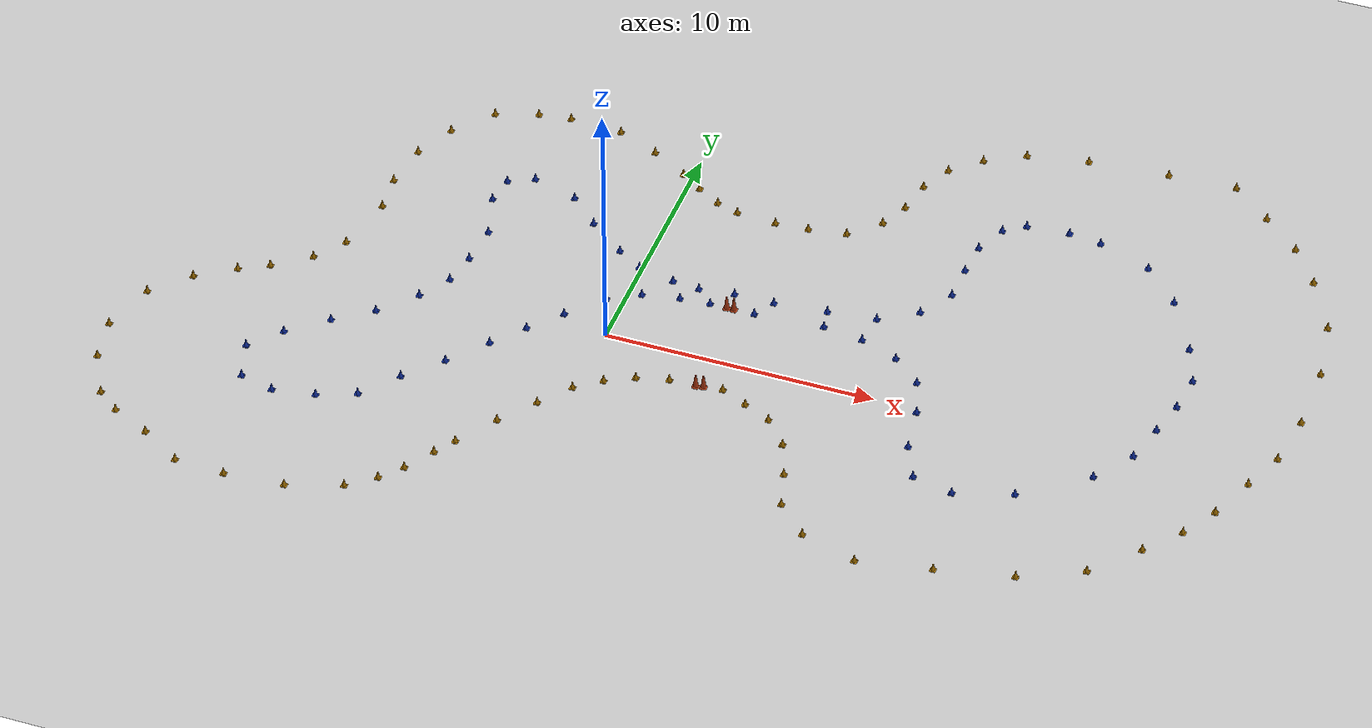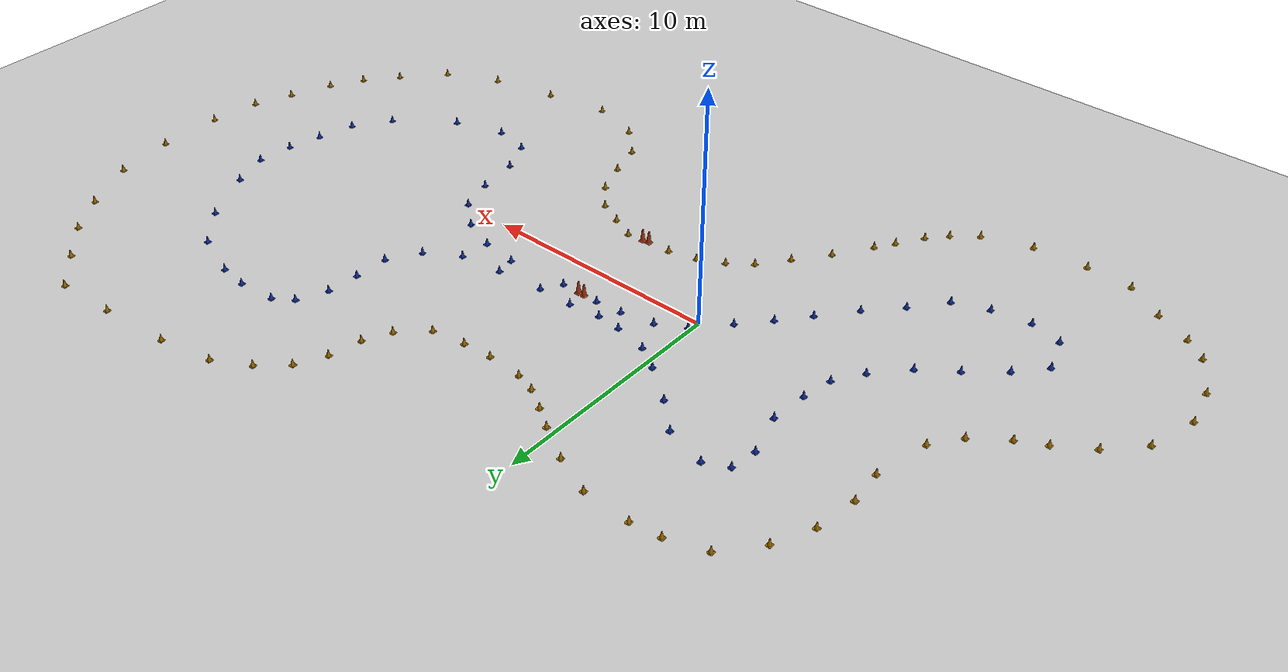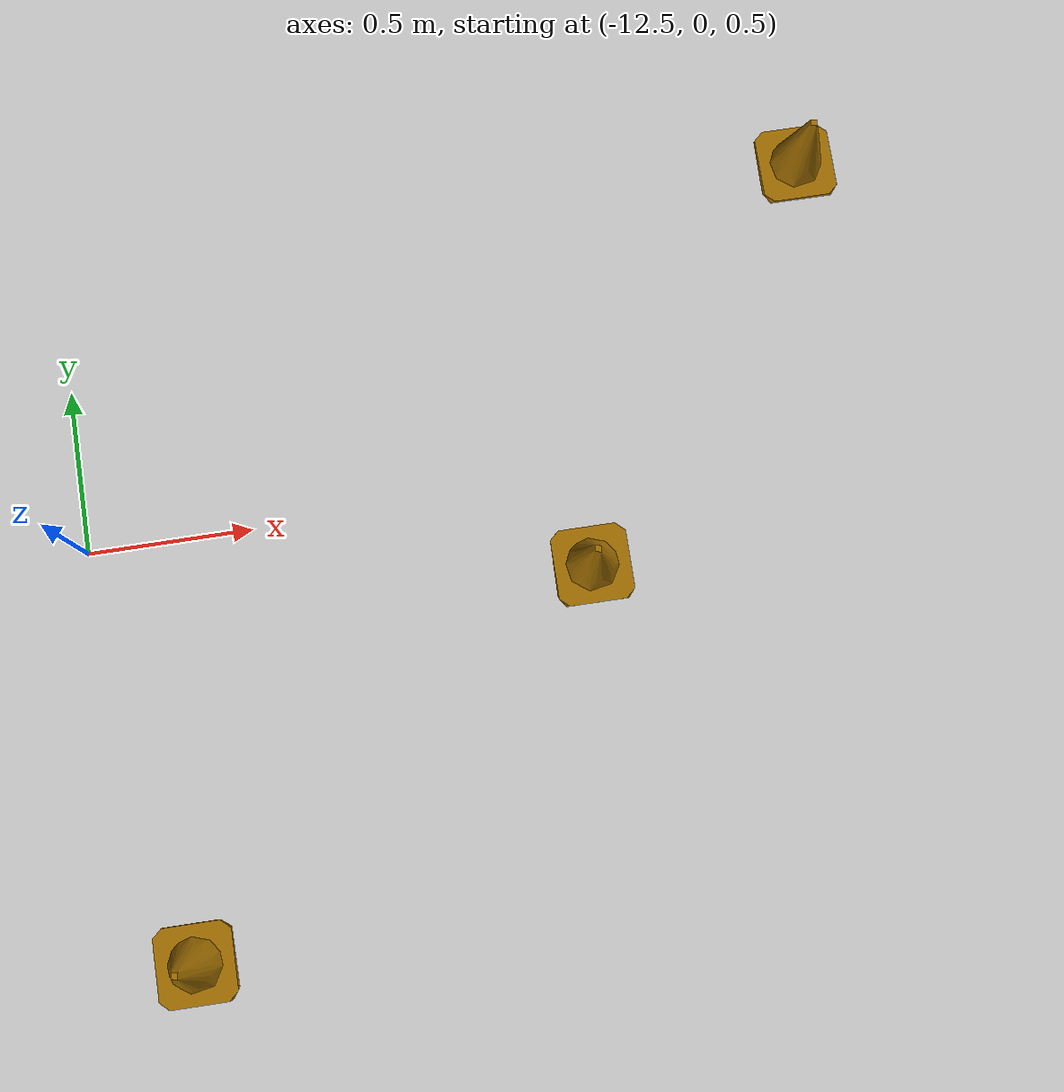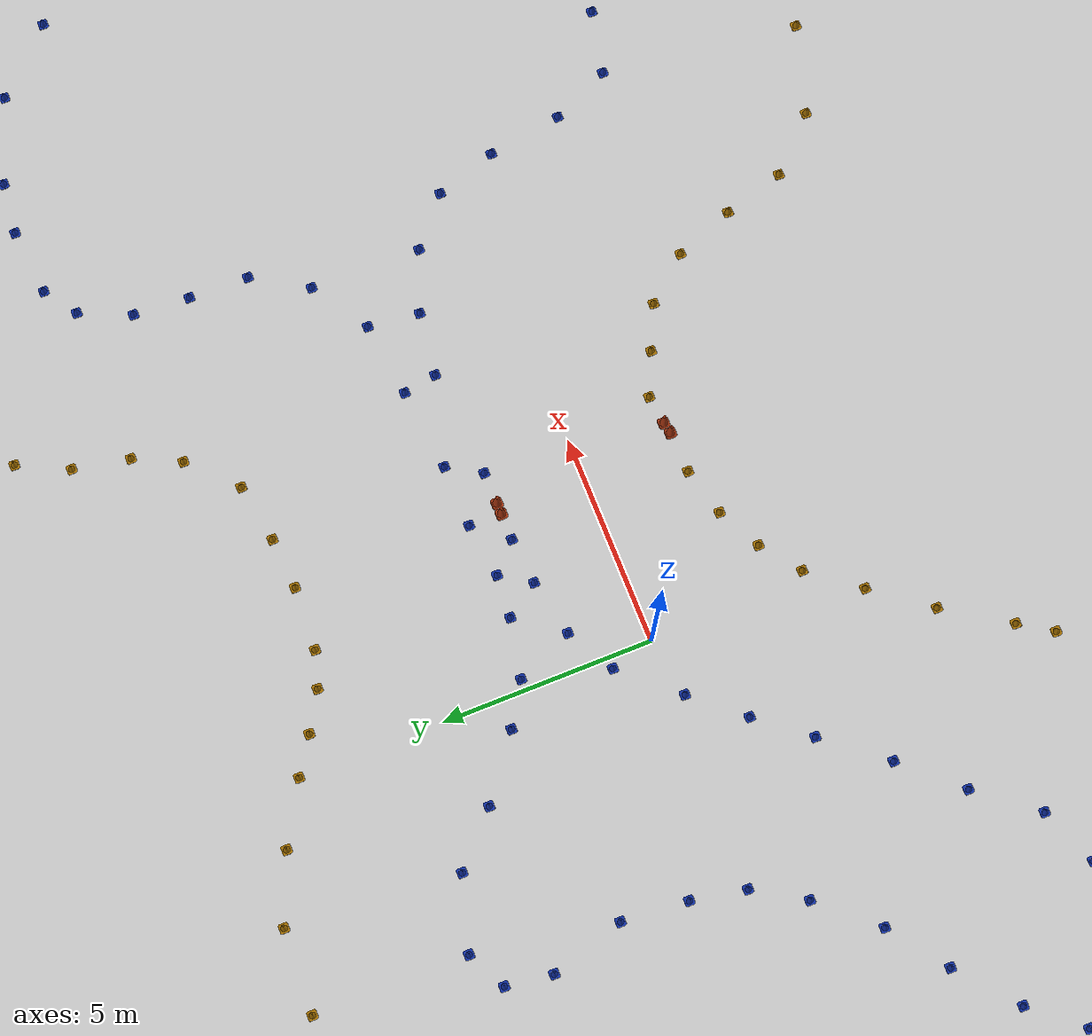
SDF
<sdf version='1.6'>
  <world name='its_a_mess'>
    <gui fullscreen='0'>
      <camera name='user_camera'>
        <pose frame=''>-40 40 20 0 0.667643 -1</pose>
        <view_controller>orbit</view_controller>
        <projection_type>perspective</projection_type>
      </camera>
    </gui>

    <!-- WORLD SETTINGS -->
    <scene>
      <ambient>1.0 1.0 1.0 1.0</ambient>
      <shadows>false</shadows>
    </scene>

    <spherical_coordinates>
      <heading_deg>180</heading_deg>

      <!-- Appleton Tower coordinates -->
      <latitude_deg>-27.69056</latitude_deg>
      <longitude_deg>152.65461</longitude_deg>
    </spherical_coordinates>

    <light name='sun' type='directional'>
      <cast_shadows>1</cast_shadows>
      <pose frame=''>0 0 10 0 -0 0</pose>
      <diffuse>0.8 0.8 0.8 1</diffuse>
      <specular>0.1 0.1 0.1 1</specular>
      <attenuation>
        <range>1000</range>
        <constant>0.9</constant>
        <linear>0.01</linear>
        <quadratic>0.001</quadratic>
      </attenuation>
      <direction>-0.5 0.5 -1</direction>
    </light>

    <!-- MODELS -->
    <include>
      <uri>model://ground_plane</uri>
      <pose>0.0 0.0 0.0 0 0 0</pose>
    </include>

    <include>
      <uri>model://its_a_mess</uri>
      <pose>0 0 0.5 0 0 0</pose>
    </include>

  </world>
</sdf>

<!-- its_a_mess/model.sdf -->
<sdf version='1.6'>
  <model name='track'>

    <include>
      <pose>4.8214289796707925 2.109534520969823 0.15 0 0 0</pose>
      <uri>model://blue_cone</uri>
      <name>blue_cone_0</name>

      <covariance x="0.000196" y="0.000196" xy="0.0"/>

    </include>

    <include>
      <pose>7.362084881419405 2.2996896382192737 0.15 0 0 0</pose>
      <uri>model://blue_cone</uri>
      <name>blue_cone_1</name>

      <covariance x="0.000196" y="0.000196" xy="0.0"/>

    </include>

    <include>
      <pose>8.85352742337615 2.095388080882326 0.15 0 0 0</pose>
      <uri>model://blue_cone</uri>
      <name>blue_cone_2</name>

      <covariance x="0.000196" y="0.000196" xy="0.0"/>

    </include>

    <include>
      <pose>10.27972573610968 1.5555186727891026 0.15 0 0 0</pose>
      <uri>model://blue_cone</uri>
      <name>blue_cone_3</name>

      <covariance x="0.000196" y="0.000196" xy="0.0"/>

    </include>

    <include>
      <pose>11.36584017246341 0.6150953153328437 0.15 0 0 0</pose>
      <uri>model://blue_cone</uri>
      <name>blue_cone_4</name>

      <covariance x="0.000196" y="0.000196" xy="0.0"/>

    </include>

    <include>
      <pose>11.83304349910687 -0.8292191570937713 0.15 0 0 0</pose>
      <uri>model://blue_cone</uri>
      <name>blue_cone_5</name>

      <covariance x="0.000196" y="0.000196" xy="0.0"/>

    </include>

    <include>
      <pose>12.108844855346984 -2.585824340989765 0.15 0 0 0</pose>
      <uri>model://blue_cone</uri>
      <name>blue_cone_6</name>

      <covariance x="0.000196" y="0.000196" xy="0.0"/>

    </include>

    <include>
      <pose>12.739354408724912 -3.9622404928255888 0.15 0 0 0</pose>
      <uri>model://blue_cone</uri>
      <name>blue_cone_7</name>

      <covariance x="0.000196" y="0.000196" xy="0.0"/>

    </include>

    <include>
      <pose>14.23705605594812 -4.29034698069868 0.15 0 0 0</pose>
      <uri>model://blue_cone</uri>
      <name>blue_cone_8</name>

      <covariance x="0.000196" y="0.000196" xy="0.0"/>

    </include>

    <include>
      <pose>16.30439192053535 -3.6306687056767313 0.15 0 0 0</pose>
      <uri>model://blue_cone</uri>
      <name>blue_cone_9</name>

      <covariance x="0.000196" y="0.000196" xy="0.0"/>

    </include>

    <include>
      <pose>18.56879719193405 -1.8938874403966963 0.15 0 0 0</pose>
      <uri>model://blue_cone</uri>
      <name>blue_cone_10</name>

      <covariance x="0.000196" y="0.000196" xy="0.0"/>

    </include>

    <include>
      <pose>19.564050074725436 -0.4315688013304607 0.15 0 0 0</pose>
      <uri>model://blue_cone</uri>
      <name>blue_cone_11</name>

      <covariance x="0.0001997419354838" y="0.0001997419354838" xy="0.0"/>

    </include>

    <include>
      <pose>19.939860737553776 1.094348420758153 0.15 0 0 0</pose>
      <uri>model://blue_cone</uri>
      <name>blue_cone_12</name>

      <covariance x="0.000196" y="0.000196" xy="0.0"/>

    </include>

    <include>
      <pose>20.26345106068241 2.475695900906594 0.15 0 0 0</pose>
      <uri>model://blue_cone</uri>
      <name>blue_cone_13</name>

      <covariance x="0.000196" y="0.000196" xy="0.0"/>

    </include>

    <include>
      <pose>20.40736412759099 3.939646282932845 0.15 0 0 0</pose>
      <uri>model://blue_cone</uri>
      <name>blue_cone_14</name>

      <covariance x="0.000196" y="0.000196" xy="0.0"/>

    </include>

    <include>
      <pose>19.83989533877488 5.480784110047874 0.15 0 0 0</pose>
      <uri>model://blue_cone</uri>
      <name>blue_cone_15</name>

      <covariance x="0.000196" y="0.000196" xy="0.0"/>

    </include>

    <include>
      <pose>18.62329169235484 7.685268326155173 0.15 0 0 0</pose>
      <uri>model://blue_cone</uri>
      <name>blue_cone_16</name>

      <covariance x="0.000196" y="0.000196" xy="0.0"/>

    </include>

    <include>
      <pose>17.236067492728257 9.12498794566818 0.15 0 0 0</pose>
      <uri>model://blue_cone</uri>
      <name>blue_cone_17</name>

      <covariance x="0.000196" y="0.000196" xy="0.0"/>

    </include>

    <include>
      <pose>15.245809163684743 9.844538271911397 0.15 0 0 0</pose>
      <uri>model://blue_cone</uri>
      <name>blue_cone_18</name>

      <covariance x="0.000196" y="0.000196" xy="0.0"/>

    </include>

    <include>
      <pose>14.037464908705076 9.9974619439644 0.15 0 0 0</pose>
      <uri>model://blue_cone</uri>
      <name>blue_cone_19</name>

      <covariance x="0.000196" y="0.000196" xy="0.0"/>

    </include>

    <include>
      <pose>12.474932555743347 9.859100764528208 0.15 0 0 0</pose>
      <uri>model://blue_cone</uri>
      <name>blue_cone_20</name>

      <covariance x="0.000196" y="0.000196" xy="0.0"/>

    </include>

    <include>
      <pose>11.717815928885946 9.33546946387704 0.15 0 0 0</pose>
      <uri>model://blue_cone</uri>
      <name>blue_cone_21</name>

      <covariance x="0.000196" y="0.000196" xy="0.0"/>

    </include>

    <include>
      <pose>11.206552284212398 8.149798904542228 0.15 0 0 0</pose>
      <uri>model://blue_cone</uri>
      <name>blue_cone_22</name>

      <covariance x="0.000196" y="0.000196" xy="0.0"/>

    </include>

    <include>
      <pose>11.121536880799685 6.828570523050228 0.15 0 0 0</pose>
      <uri>model://blue_cone</uri>
      <name>blue_cone_23</name>

      <covariance x="0.000196" y="0.000196" xy="0.0"/>

    </include>

    <include>
      <pose>11.089103792355496 5.423714410866328 0.15 0 0 0</pose>
      <uri>model://blue_cone</uri>
      <name>blue_cone_24</name>

      <covariance x="0.000196" y="0.000196" xy="0.0"/>

    </include>

    <include>
      <pose>10.322925798841846 4.161218523823576 0.15 0 0 0</pose>
      <uri>model://blue_cone</uri>
      <name>blue_cone_25</name>

      <covariance x="0.000196" y="0.000196" xy="0.0"/>

    </include>

    <include>
      <pose>8.988343264840141 3.3039751500155905 0.15 0 0 0</pose>
      <uri>model://blue_cone</uri>
      <name>blue_cone_26</name>

      <covariance x="0.000196" y="0.000196" xy="0.0"/>

    </include>

    <include>
      <pose>7.222726623899107 3.091712547316123 0.15 0 0 0</pose>
      <uri>model://blue_cone</uri>
      <name>blue_cone_27</name>

      <covariance x="0.000196" y="0.000196" xy="0.0"/>

    </include>

    <include>
      <pose>5.284647391741218 2.891301906877059 0.15 0 0 0</pose>
      <uri>model://blue_cone</uri>
      <name>blue_cone_28</name>

      <covariance x="0.000196" y="0.000196" xy="0.0"/>

    </include>

    <include>
      <pose>3.816469104313143 2.868736036678886 0.15 0 0 0</pose>
      <uri>model://blue_cone</uri>
      <name>blue_cone_29</name>

      <covariance x="0.000196" y="0.000196" xy="0.0"/>

    </include>

    <include>
      <pose>2.529690135249283 2.7088008638666 0.15 0 0 0</pose>
      <uri>model://blue_cone</uri>
      <name>blue_cone_30</name>

      <covariance x="0.000196" y="0.000196" xy="0.0"/>

    </include>

    <include>
      <pose>1.5252200228737984 2.789037315047576 0.15 0 0 0</pose>
      <uri>model://blue_cone</uri>
      <name>blue_cone_31</name>

      <covariance x="0.000196" y="0.000196" xy="0.0"/>

    </include>

    <include>
      <pose>0.1456731950192958 3.080291042039387 0.15 0 0 0</pose>
      <uri>model://blue_cone</uri>
      <name>blue_cone_32</name>

      <covariance x="0.0001992222222222" y="0.0001992222222222" xy="0.0"/>

    </include>

    <include>
      <pose>-0.8196889122386551 3.690847556210096 0.15 0 0 0</pose>
      <uri>model://blue_cone</uri>
      <name>blue_cone_33</name>

      <covariance x="0.000196" y="0.000196" xy="0.0"/>

    </include>

    <include>
      <pose>-2.228840832571205 4.773949619520888 0.15 0 0 0</pose>
      <uri>model://blue_cone</uri>
      <name>blue_cone_34</name>

      <covariance x="0.000196" y="0.000196" xy="0.0"/>

    </include>

    <include>
      <pose>-3.367631466225215 5.85537457586615 0.15 0 0 0</pose>
      <uri>model://blue_cone</uri>
      <name>blue_cone_35</name>

      <covariance x="0.000196" y="0.000196" xy="0.0"/>

    </include>

    <include>
      <pose>-5.0768380693607975 6.366438186335612 0.15 0 0 0</pose>
      <uri>model://blue_cone</uri>
      <name>blue_cone_36</name>

      <covariance x="0.000196" y="0.000196" xy="0.0"/>

    </include>

    <include>
      <pose>-5.992009869586433 5.911634285918478 0.15 0 0 0</pose>
      <uri>model://blue_cone</uri>
      <name>blue_cone_37</name>

      <covariance x="0.000196" y="0.000196" xy="0.0"/>

    </include>

    <include>
      <pose>-6.138349926675422 4.809588502000279 0.15 0 0 0</pose>
      <uri>model://blue_cone</uri>
      <name>blue_cone_38</name>

      <covariance x="0.000196" y="0.000196" xy="0.0"/>

    </include>

    <include>
      <pose>-5.621073259159888 3.057539222654084 0.15 0 0 0</pose>
      <uri>model://blue_cone</uri>
      <name>blue_cone_39</name>

      <covariance x="0.000196" y="0.000196" xy="0.0"/>

    </include>

    <include>
      <pose>-5.7435806540893575 1.4973061031362862 0.15 0 0 0</pose>
      <uri>model://blue_cone</uri>
      <name>blue_cone_40</name>

      <covariance x="0.000196" y="0.000196" xy="0.0"/>

    </include>

    <include>
      <pose>-5.98044005978915 0.21567549281799 0.15 0 0 0</pose>
      <uri>model://blue_cone</uri>
      <name>blue_cone_41</name>

      <covariance x="0.000196" y="0.000196" xy="0.0"/>

    </include>

    <include>
      <pose>-6.69282893879381 -0.9405404900182862 0.15 0 0 0</pose>
      <uri>model://blue_cone</uri>
      <name>blue_cone_42</name>

      <covariance x="0.000196" y="0.000196" xy="0.0"/>

    </include>

    <include>
      <pose>-7.833151155935672 -2.218574142081634 0.15 0 0 0</pose>
      <uri>model://blue_cone</uri>
      <name>blue_cone_43</name>

      <covariance x="0.000196" y="0.000196" xy="0.0"/>

    </include>

    <include>
      <pose>-9.14903637392294 -3.1939194036578407 0.15 0 0 0</pose>
      <uri>model://blue_cone</uri>
      <name>blue_cone_44</name>

      <covariance x="0.000196" y="0.000196" xy="0.0"/>

    </include>

    <include>
      <pose>-10.477001962463143 -4.321130469053749 0.15 0 0 0</pose>
      <uri>model://blue_cone</uri>
      <name>blue_cone_45</name>

      <covariance x="0.000196" y="0.000196" xy="0.0"/>

    </include>

    <include>
      <pose>-11.44095543648099 -5.446559209881228 0.15 0 0 0</pose>
      <uri>model://blue_cone</uri>
      <name>blue_cone_46</name>

      <covariance x="0.000196" y="0.000196" xy="0.0"/>

    </include>

    <include>
      <pose>-10.97991515616471 -6.9431300898168695 0.15 0 0 0</pose>
      <uri>model://blue_cone</uri>
      <name>blue_cone_47</name>

      <covariance x="0.000196" y="0.000196" xy="0.0"/>

    </include>

    <include>
      <pose>-9.71003554814767 -7.265180402578588 0.15 0 0 0</pose>
      <uri>model://blue_cone</uri>
      <name>blue_cone_48</name>

      <covariance x="0.000196" y="0.000196" xy="0.0"/>

    </include>

    <include>
      <pose>-8.16531074104349 -7.005628000005348 0.15 0 0 0</pose>
      <uri>model://blue_cone</uri>
      <name>blue_cone_49</name>

      <covariance x="0.000196" y="0.000196" xy="0.0"/>

    </include>

    <include>
      <pose>-6.800706765361042 -6.458798806725916 0.15 0 0 0</pose>
      <uri>model://blue_cone</uri>
      <name>blue_cone_50</name>

      <covariance x="0.000196" y="0.000196" xy="0.0"/>

    </include>

    <include>
      <pose>-5.72646770180295 -5.112721213656666 0.15 0 0 0</pose>
      <uri>model://blue_cone</uri>
      <name>blue_cone_51</name>

      <covariance x="0.0001978125" y="0.0001978125" xy="0.0"/>

    </include>

    <include>
      <pose>-4.554133358810368 -3.837591717632877 0.15 0 0 0</pose>
      <uri>model://blue_cone</uri>
      <name>blue_cone_52</name>

      <covariance x="0.000196" y="0.000196" xy="0.0"/>

    </include>

    <include>
      <pose>-3.4278001577254127 -2.4512542635725496 0.15 0 0 0</pose>
      <uri>model://blue_cone</uri>
      <name>blue_cone_53</name>

      <covariance x="0.000196" y="0.000196" xy="0.0"/>

    </include>

    <include>
      <pose>-2.489133773496212 -1.2831951619269517 0.15 0 0 0</pose>
      <uri>model://blue_cone</uri>
      <name>blue_cone_54</name>

      <covariance x="0.000196" y="0.000196" xy="0.0"/>

    </include>

    <include>
      <pose>-1.5027682092815549 -0.1469269043776656 0.15 0 0 0</pose>
      <uri>model://blue_cone</uri>
      <name>blue_cone_55</name>

      <covariance x="0.000196" y="0.000196" xy="0.0"/>

    </include>

    <include>
      <pose>-0.3753500330211936 1.1075215976557389 0.15 0 0 0</pose>
      <uri>model://blue_cone</uri>
      <name>blue_cone_56</name>

      <covariance x="0.000196" y="0.000196" xy="0.0"/>

    </include>

    <include>
      <pose>0.7295692745355773 1.735027937512749 0.15 0 0 0</pose>
      <uri>model://blue_cone</uri>
      <name>blue_cone_57</name>

      <covariance x="0.000196" y="0.000196" xy="0.0"/>

    </include>

    <include>
      <pose>2.06942919758116 2.005554994720331 0.15 0 0 0</pose>
      <uri>model://blue_cone</uri>
      <name>blue_cone_58</name>

      <covariance x="0.000196" y="0.000196" xy="0.0"/>

    </include>

    <include>
      <pose>3.1698856110931 2.1001675143921634 0.15 0 0 0</pose>
      <uri>model://blue_cone</uri>
      <name>blue_cone_59</name>

      <covariance x="0.000196" y="0.000196" xy="0.0"/>

    </include>

    <include>
      <pose>5.108230720354353 -2.0034897337304542 0.15 0 0 0</pose>
      <uri>model://yellow_cone</uri>
      <name>yellow_cone_60</name>

      <covariance x="0.000196" y="0.000196" xy="0.0"/>

    </include>

    <include>
      <pose>6.096152170796511 -2.4527937148287604 0.15 0 0 0</pose>
      <uri>model://yellow_cone</uri>
      <name>yellow_cone_61</name>

      <covariance x="0.000196" y="0.000196" xy="0.0"/>

    </include>

    <include>
      <pose>7.117050602336171 -2.931042052039907 0.15 0 0 0</pose>
      <uri>model://yellow_cone</uri>
      <name>yellow_cone_62</name>

      <covariance x="0.000196" y="0.000196" xy="0.0"/>

    </include>

    <include>
      <pose>7.99331940606393 -3.952691580855978 0.15 0 0 0</pose>
      <uri>model://yellow_cone</uri>
      <name>yellow_cone_63</name>

      <covariance x="0.000196" y="0.000196" xy="0.0"/>

    </include>

    <include>
      <pose>8.522666573627157 -5.3442512495655325 0.15 0 0 0</pose>
      <uri>model://yellow_cone</uri>
      <name>yellow_cone_64</name>

      <covariance x="0.000196" y="0.000196" xy="0.0"/>

    </include>

    <include>
      <pose>8.937436416146909 -6.782336140114061 0.15 0 0 0</pose>
      <uri>model://yellow_cone</uri>
      <name>yellow_cone_65</name>

      <covariance x="0.000196" y="0.000196" xy="0.0"/>

    </include>

    <include>
      <pose>10.091665702733463 -7.941948638960429 0.15 0 0 0</pose>
      <uri>model://yellow_cone</uri>
      <name>yellow_cone_66</name>

      <covariance x="0.000196" y="0.000196" xy="0.0"/>

    </include>

    <include>
      <pose>12.170632528152256 -8.569999305310416 0.15 0 0 0</pose>
      <uri>model://yellow_cone</uri>
      <name>yellow_cone_67</name>

      <covariance x="0.000196" y="0.000196" xy="0.0"/>

    </include>

    <include>
      <pose>14.811756816526596 -8.070045143327375 0.15 0 0 0</pose>
      <uri>model://yellow_cone</uri>
      <name>yellow_cone_68</name>

      <covariance x="0.000196" y="0.000196" xy="0.0"/>

    </include>

    <include>
      <pose>17.54667973242898 -7.478267646350247 0.15 0 0 0</pose>
      <uri>model://yellow_cone</uri>
      <name>yellow_cone_69</name>

      <covariance x="0.000196" y="0.000196" xy="0.0"/>

    </include>

    <include>
      <pose>19.72840829425381 -6.408207424974679 0.15 0 0 0</pose>
      <uri>model://yellow_cone</uri>
      <name>yellow_cone_70</name>

      <covariance x="0.000196" y="0.000196" xy="0.0"/>

    </include>

    <include>
      <pose>21.193193698083142 -4.790743010990266 0.15 0 0 0</pose>
      <uri>model://yellow_cone</uri>
      <name>yellow_cone_71</name>

      <covariance x="0.000196" y="0.000196" xy="0.0"/>

    </include>

    <include>
      <pose>22.25244661889156 -3.5063914812990933 0.15 0 0 0</pose>
      <uri>model://yellow_cone</uri>
      <name>yellow_cone_72</name>

      <covariance x="0.000196" y="0.000196" xy="0.0"/>

    </include>

    <include>
      <pose>23.007103066051453 -2.1796530678642987 0.15 0 0 0</pose>
      <uri>model://yellow_cone</uri>
      <name>yellow_cone_73</name>

      <covariance x="0.000196" y="0.000196" xy="0.0"/>

    </include>

    <include>
      <pose>23.67962634333316 -0.4540837046513448 0.15 0 0 0</pose>
      <uri>model://yellow_cone</uri>
      <name>yellow_cone_74</name>

      <covariance x="0.000196" y="0.000196" xy="0.0"/>

    </include>

    <include>
      <pose>24.287082185329176 1.1034364837132262 0.15 0 0 0</pose>
      <uri>model://yellow_cone</uri>
      <name>yellow_cone_75</name>

      <covariance x="0.000196" y="0.000196" xy="0.0"/>

    </include>

    <include>
      <pose>24.55067308980838 3.155807963786877 0.15 0 0 0</pose>
      <uri>model://yellow_cone</uri>
      <name>yellow_cone_76</name>

      <covariance x="0.000196" y="0.000196" xy="0.0"/>

    </include>

    <include>
      <pose>24.52175817701454 5.77792621193351 0.15 0 0 0</pose>
      <uri>model://yellow_cone</uri>
      <name>yellow_cone_77</name>

      <covariance x="0.000196" y="0.000196" xy="0.0"/>

    </include>

    <include>
      <pose>24.10747716406054 8.20373316034032 0.15 0 0 0</pose>
      <uri>model://yellow_cone</uri>
      <name>yellow_cone_78</name>

      <covariance x="0.000196" y="0.000196" xy="0.0"/>

    </include>

    <include>
      <pose>22.988933155742732 10.369064208119006 0.15 0 0 0</pose>
      <uri>model://yellow_cone</uri>
      <name>yellow_cone_79</name>

      <covariance x="0.000196" y="0.000196" xy="0.0"/>

    </include>

    <include>
      <pose>21.902132020885507 11.879809793727196 0.15 0 0 0</pose>
      <uri>model://yellow_cone</uri>
      <name>yellow_cone_80</name>

      <covariance x="0.000196" y="0.000196" xy="0.0"/>

    </include>

    <include>
      <pose>20.473816744907086 13.158658905871738 0.15 0 0 0</pose>
      <uri>model://yellow_cone</uri>
      <name>yellow_cone_81</name>

      <covariance x="0.000196" y="0.000196" xy="0.0"/>

    </include>

    <include>
      <pose>18.973867134767374 14.42005905660278 0.15 0 0 0</pose>
      <uri>model://yellow_cone</uri>
      <name>yellow_cone_82</name>

      <covariance x="0.000196" y="0.000196" xy="0.0"/>

    </include>

    <include>
      <pose>16.473065661620293 14.28136549107889 0.15 0 0 0</pose>
      <uri>model://yellow_cone</uri>
      <name>yellow_cone_83</name>

      <covariance x="0.000196" y="0.000196" xy="0.0"/>

    </include>

    <include>
      <pose>13.521792118405765 14.030613387977256 0.15 0 0 0</pose>
      <uri>model://yellow_cone</uri>
      <name>yellow_cone_84</name>

      <covariance x="0.000196" y="0.000196" xy="0.0"/>

    </include>

    <include>
      <pose>11.302823550348007 13.595496527329756 0.15 0 0 0</pose>
      <uri>model://yellow_cone</uri>
      <name>yellow_cone_85</name>

      <covariance x="0.000196" y="0.000196" xy="0.0"/>

    </include>

    <include>
      <pose>9.894189855877237 12.79408604489956 0.15 0 0 0</pose>
      <uri>model://yellow_cone</uri>
      <name>yellow_cone_86</name>

      <covariance x="0.000196" y="0.000196" xy="0.0"/>

    </include>

    <include>
      <pose>8.86115898133351 11.844793417476406 0.15 0 0 0</pose>
      <uri>model://yellow_cone</uri>
      <name>yellow_cone_87</name>

      <covariance x="0.000196" y="0.000196" xy="0.0"/>

    </include>

    <include>
      <pose>8.299853906189222 10.680796605214232 0.15 0 0 0</pose>
      <uri>model://yellow_cone</uri>
      <name>yellow_cone_88</name>

      <covariance x="0.000196" y="0.000196" xy="0.0"/>

    </include>

    <include>
      <pose>8.042713273260595 9.36238499525399 0.15 0 0 0</pose>
      <uri>model://yellow_cone</uri>
      <name>yellow_cone_89</name>

      <covariance x="0.000196" y="0.000196" xy="0.0"/>

    </include>

    <include>
      <pose>7.543238669066342 8.290664061597628 0.15 0 0 0</pose>
      <uri>model://yellow_cone</uri>
      <name>yellow_cone_90</name>

      <covariance x="0.000196" y="0.000196" xy="0.0"/>

    </include>

    <include>
      <pose>6.512340358017483 7.291295016333289 0.15 0 0 0</pose>
      <uri>model://yellow_cone</uri>
      <name>yellow_cone_91</name>

      <covariance x="0.000196" y="0.000196" xy="0.0"/>

    </include>

    <include>
      <pose>5.129345996265017 7.0662056758804335 0.15 0 0 0</pose>
      <uri>model://yellow_cone</uri>
      <name>yellow_cone_92</name>

      <covariance x="0.000196" y="0.000196" xy="0.0"/>

    </include>

    <include>
      <pose>2.429376462805198 7.074505419944569 0.15 0 0 0</pose>
      <uri>model://yellow_cone</uri>
      <name>yellow_cone_93</name>

      <covariance x="0.000196" y="0.000196" xy="0.0"/>

    </include>

    <include>
      <pose>1.589505210403423 7.334207083554599 0.15 0 0 0</pose>
      <uri>model://yellow_cone</uri>
      <name>yellow_cone_94</name>

      <covariance x="0.000196" y="0.000196" xy="0.0"/>

    </include>

    <include>
      <pose>0.712052011582489 7.858837452812128 0.15 0 0 0</pose>
      <uri>model://yellow_cone</uri>
      <name>yellow_cone_95</name>

      <covariance x="0.000196" y="0.000196" xy="0.0"/>

    </include>

    <include>
      <pose>-0.1130738919589362 8.411578517489353 0.15 0 0 0</pose>
      <uri>model://yellow_cone</uri>
      <name>yellow_cone_96</name>

      <covariance x="0.000196" y="0.000196" xy="0.0"/>

    </include>

    <include>
      <pose>-1.4995180365496996 9.224846478630678 0.15 0 0 0</pose>
      <uri>model://yellow_cone</uri>
      <name>yellow_cone_97</name>

      <covariance x="0.000196" y="0.000196" xy="0.0"/>

    </include>

    <include>
      <pose>-3.0762628129874963 9.880147729325529 0.15 0 0 0</pose>
      <uri>model://yellow_cone</uri>
      <name>yellow_cone_98</name>

      <covariance x="0.000196" y="0.000196" xy="0.0"/>

    </include>

    <include>
      <pose>-5.0516151667660525 9.97283570622303 0.15 0 0 0</pose>
      <uri>model://yellow_cone</uri>
      <name>yellow_cone_99</name>

      <covariance x="0.000196" y="0.000196" xy="0.0"/>

    </include>

    <include>
      <pose>-6.250665821579251 9.815566384812964 0.15 0 0 0</pose>
      <uri>model://yellow_cone</uri>
      <name>yellow_cone_100</name>

      <covariance x="0.000196" y="0.000196" xy="0.0"/>

    </include>

    <include>
      <pose>-7.773639357440816 9.30164620544454 0.15 0 0 0</pose>
      <uri>model://yellow_cone</uri>
      <name>yellow_cone_101</name>

      <covariance x="0.000196" y="0.000196" xy="0.0"/>

    </include>

    <include>
      <pose>-8.949799376212045 7.884545035164269 0.15 0 0 0</pose>
      <uri>model://yellow_cone</uri>
      <name>yellow_cone_102</name>

      <covariance x="0.000196" y="0.000196" xy="0.0"/>

    </include>

    <include>
      <pose>-9.64289918680881 6.35295416465792 0.15 0 0 0</pose>
      <uri>model://yellow_cone</uri>
      <name>yellow_cone_103</name>

      <covariance x="0.000196" y="0.000196" xy="0.0"/>

    </include>

    <include>
      <pose>-9.881685603404424 4.580912347192863 0.15 0 0 0</pose>
      <uri>model://yellow_cone</uri>
      <name>yellow_cone_104</name>

      <covariance x="0.000196" y="0.000196" xy="0.0"/>

    </include>

    <include>
      <pose>-9.736444548224682 3.117147570873862 0.15 0 0 0</pose>
      <uri>model://yellow_cone</uri>
      <name>yellow_cone_105</name>

      <covariance x="0.000196" y="0.000196" xy="0.0"/>

    </include>

    <include>
      <pose>-10.21610396374014 0.8454799766648938 0.15 0 0 0</pose>
      <uri>model://yellow_cone</uri>
      <name>yellow_cone_106</name>

      <covariance x="0.000196" y="0.000196" xy="0.0"/>

    </include>

    <include>
      <pose>-11.018213319672482 -0.2787252644819565 0.15 0 0 0</pose>
      <uri>model://yellow_cone</uri>
      <name>yellow_cone_107</name>

      <covariance x="0.000196" y="0.000196" xy="0.0"/>

    </include>

    <include>
      <pose>-12.287660001886048 -1.2283961505822862 0.15 0 0 0</pose>
      <uri>model://yellow_cone</uri>
      <name>yellow_cone_108</name>

      <covariance x="0.000196" y="0.000196" xy="0.0"/>

    </include>

    <include>
      <pose>-13.312115889608313 -1.785516220794974 0.15 0 0 0</pose>
      <uri>model://yellow_cone</uri>
      <name>yellow_cone_109</name>

      <covariance x="0.000196" y="0.000196" xy="0.0"/>

    </include>

    <include>
      <pose>-14.646204464141563 -2.683939399093564 0.15 0 0 0</pose>
      <uri>model://yellow_cone</uri>
      <name>yellow_cone_110</name>

      <covariance x="0.000196" y="0.000196" xy="0.0"/>

    </include>

    <include>
      <pose>-15.866382651860638 -3.9764249312163695 0.15 0 0 0</pose>
      <uri>model://yellow_cone</uri>
      <name>yellow_cone_111</name>

      <covariance x="0.000196" y="0.000196" xy="0.0"/>

    </include>

    <include>
      <pose>-16.440599362522033 -6.0125212660794825 0.15 0 0 0</pose>
      <uri>model://yellow_cone</uri>
      <name>yellow_cone_112</name>

      <covariance x="0.000196" y="0.000196" xy="0.0"/>

    </include>

    <include>
      <pose>-16.143405833349497 -7.699058760817485 0.15 0 0 0</pose>
      <uri>model://yellow_cone</uri>
      <name>yellow_cone_113</name>

      <covariance x="0.000196" y="0.000196" xy="0.0"/>

    </include>

    <include>
      <pose>-15.265037443831089 -9.388596946609766 0.15 0 0 0</pose>
      <uri>model://yellow_cone</uri>
      <name>yellow_cone_114</name>

      <covariance x="0.000196" y="0.000196" xy="0.0"/>

    </include>

    <include>
      <pose>-14.408779198861527 -10.05894552413488 0.15 0 0 0</pose>
      <uri>model://yellow_cone</uri>
      <name>yellow_cone_115</name>

      <covariance x="0.000196" y="0.000196" xy="0.0"/>

    </include>

    <include>
      <pose>-12.986640574652082 -10.73596464373771 0.15 0 0 0</pose>
      <uri>model://yellow_cone</uri>
      <name>yellow_cone_116</name>

      <covariance x="0.000196" y="0.000196" xy="0.0"/>

    </include>

    <include>
      <pose>-11.46333525667482 -11.685031026514483 0.15 0 0 0</pose>
      <uri>model://yellow_cone</uri>
      <name>yellow_cone_117</name>

      <covariance x="0.000196" y="0.000196" xy="0.0"/>

    </include>

    <include>
      <pose>-9.613052631583402 -11.771897381391 0.15 0 0 0</pose>
      <uri>model://yellow_cone</uri>
      <name>yellow_cone_118</name>

      <covariance x="0.000196" y="0.000196" xy="0.0"/>

    </include>

    <include>
      <pose>-7.432163222852099 -11.597997641872 0.15 0 0 0</pose>
      <uri>model://yellow_cone</uri>
      <name>yellow_cone_119</name>

      <covariance x="0.000196" y="0.000196" xy="0.0"/>

    </include>

    <include>
      <pose>-5.483073617351842 -10.92920988909439 0.15 0 0 0</pose>
      <uri>model://yellow_cone</uri>
      <name>yellow_cone_120</name>

      <covariance x="0.000196" y="0.000196" xy="0.0"/>

    </include>

    <include>
      <pose>-4.537810694132519 -10.169768957032968 0.15 0 0 0</pose>
      <uri>model://yellow_cone</uri>
      <name>yellow_cone_121</name>

      <covariance x="0.000196" y="0.000196" xy="0.0"/>

    </include>

    <include>
      <pose>-3.8750003928520815 -9.405455542164306 0.15 0 0 0</pose>
      <uri>model://yellow_cone</uri>
      <name>yellow_cone_122</name>

      <covariance x="0.000196" y="0.000196" xy="0.0"/>

    </include>

    <include>
      <pose>-3.2037647319558613 -8.336332630859685 0.15 0 0 0</pose>
      <uri>model://yellow_cone</uri>
      <name>yellow_cone_123</name>

      <covariance x="0.000196" y="0.000196" xy="0.0"/>

    </include>

    <include>
      <pose>-2.7116143647752264 -7.5779924969844865 0.15 0 0 0</pose>
      <uri>model://yellow_cone</uri>
      <name>yellow_cone_124</name>

      <covariance x="0.000196" y="0.000196" xy="0.0"/>

    </include>

    <include>
      <pose>-1.7450770310617203 -6.096109403353242 0.15 0 0 0</pose>
      <uri>model://yellow_cone</uri>
      <name>yellow_cone_125</name>

      <covariance x="0.000196" y="0.000196" xy="0.0"/>

    </include>

    <include>
      <pose>-0.7528506930274412 -4.788441408413104 0.15 0 0 0</pose>
      <uri>model://yellow_cone</uri>
      <name>yellow_cone_126</name>

      <covariance x="0.000196" y="0.000196" xy="0.0"/>

    </include>

    <include>
      <pose>0.1355770829606343 -3.646461872990359 0.15 0 0 0</pose>
      <uri>model://yellow_cone</uri>
      <name>yellow_cone_127</name>

      <covariance x="0.000196" y="0.000196" xy="0.0"/>

    </include>

    <include>
      <pose>1.0307534270772682 -2.962882796263745 0.15 0 0 0</pose>
      <uri>model://yellow_cone</uri>
      <name>yellow_cone_128</name>

      <covariance x="0.000196" y="0.000196" xy="0.0"/>

    </include>

    <include>
      <pose>2.043628375149085 -2.4475917094295525 0.15 0 0 0</pose>
      <uri>model://yellow_cone</uri>
      <name>yellow_cone_129</name>

      <covariance x="0.000196" y="0.000196" xy="0.0"/>

    </include>

    <include>
      <pose>3.18170581156444 -2.154285493839841 0.15 0 0 0</pose>
      <uri>model://yellow_cone</uri>
      <name>yellow_cone_130</name>

      <covariance x="0.000196" y="0.000196" xy="0.0"/>

    </include>

    <include>
      <pose>3.914515901584666 6.985634407993183 0.15 0 0 0</pose>
      <uri>model://yellow_cone</uri>
      <name>yellow_cone_131</name>

      <covariance x="0.000196" y="0.000196" xy="0.0"/>

    </include>

    <include>
      <pose>4.152545590729751 -2.127754190472765 0.15 0 0 0</pose>
      <uri>model://big_cone</uri>
      <name>big_cone_132</name>

      <covariance x="0.000196" y="0.000196" xy="0.0"/>

    </include>

    <include>
      <pose>4.422508525189119 -2.0746701929327087 0.15 0 0 0</pose>
      <uri>model://big_cone</uri>
      <name>big_cone_133</name>

      <covariance x="0.000196" y="0.000196" xy="0.0"/>

    </include>

    <include>
      <pose>3.796969849331404 2.099092627956534 0.15 0 0 0</pose>
      <uri>model://big_cone</uri>
      <name>big_cone_134</name>

      <covariance x="0.000196" y="0.000196" xy="0.0"/>

    </include>

    <include>
      <pose>4.064155463229586 2.1033317537871987 0.15 0 0 0</pose>
      <uri>model://big_cone</uri>
      <name>big_cone_135</name>

      <covariance x="0.000196" y="0.000196" xy="0.0"/>

    </include>

    <static>0</static>
    <allow_auto_disable>1</allow_auto_disable>
  </model>
</sdf>

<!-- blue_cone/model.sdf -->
<sdf version='1.6'>
  <model name='blue_cone'>
    <link name='link'>
      <pose frame=''>0 0 0 0 0 0</pose>
      <inertial>
        <inertia>
          <ixx>0.0016</ixx>
          <ixy>0</ixy>
          <ixz>0</ixz>
          <iyy>0.0016</iyy>
          <iyz>0</iyz>
          <izz>0.0010</izz>
        </inertia>
        <mass>0.45</mass>
      </inertial>
      <visual name='visual'>
        <geometry>
          <mesh>
            <uri>model://cone_blue.dae</uri>
          </mesh>
        </geometry>
        <cast_shadows>1</cast_shadows>
      </visual>
      <collision name='collision'>
        <max_contacts>3</max_contacts>
        <geometry>
          <mesh>
            <uri>model://cone_blue.dae</uri>
          </mesh>
        </geometry>
      </collision>
    </link>
  </model>
</sdf>

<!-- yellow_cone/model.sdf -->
<sdf version='1.6'>
  <model name='yellow_cone'>
    <link name='link'>
      <pose frame=''>0 0 0 0 0 0</pose>
      <inertial>
        <inertia>
          <ixx>0.0016</ixx>
          <ixy>0</ixy>
          <ixz>0</ixz>
          <iyy>0.0016</iyy>
          <iyz>0</iyz>
          <izz>0.0010</izz>
        </inertia>
        <mass>0.45</mass>
      </inertial>
      <visual name='visual'>
        <geometry>
          <mesh>
            <uri>model://cone_yellow.dae</uri>
          </mesh>
        </geometry>
        <cast_shadows>1</cast_shadows>
      </visual>
      <collision name='collision'>
        <max_contacts>3</max_contacts>
        <geometry>
          <mesh>
            <uri>model://cone_yellow.dae</uri>
          </mesh>
        </geometry>
      </collision>
    </link>
  </model>
</sdf>

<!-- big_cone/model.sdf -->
<sdf version='1.6'>
  <model name='big_cone'>
    <link name='link'>
      <pose frame=''>0 0 0 0 0 0</pose>
      <inertial>
        <inertia>
          <ixx>0.0016</ixx>
          <ixy>0</ixy>
          <ixz>0</ixz>
          <iyy>0.0016</iyy>
          <iyz>0</iyz>
          <izz>0.0010</izz>
        </inertia>
        <mass>0.45</mass>
      </inertial>
      <visual name='visual'>
        <geometry>
          <mesh>
            <uri>model://cone_big.dae</uri>
          </mesh>
        </geometry>
        <cast_shadows>1</cast_shadows>
      </visual>
      <collision name='collision'>
        <max_contacts>3</max_contacts>
        <geometry>
          <mesh>
            <uri>model://cone_big.dae</uri>
          </mesh>
        </geometry>
      </collision>
    </link>
  </model>
</sdf>
